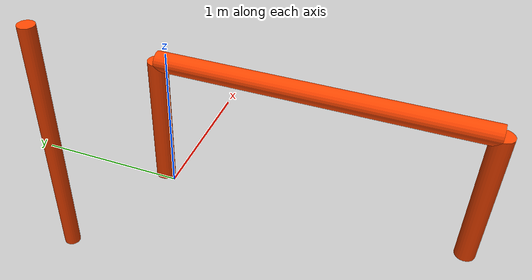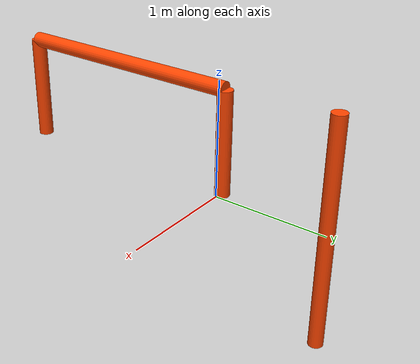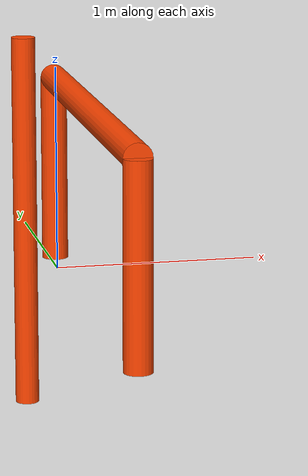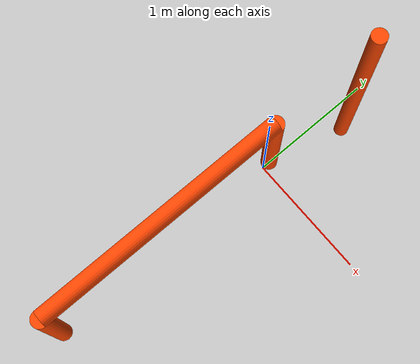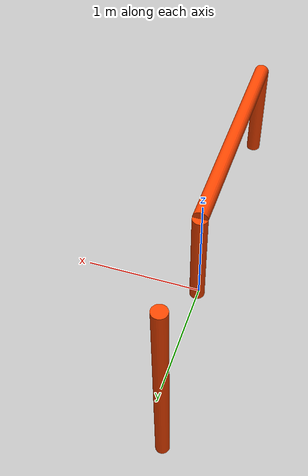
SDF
<sdf version="1.6">
 <world name="default">
  <light name="sun" type="directional">
   <pose>0 0 10 0 -0 0</pose>
   <diffuse>0.8 0.8 0.8 1</diffuse>
   <specular>0.2 0.2 0.2 1</specular>
   <attenuation>
    <range>1000</range>
    <constant>0.9</constant>
    <linear>0.01</linear>
    <quadratic>0.001</quadratic>
   </attenuation>
   <direction>-0.5 0.1 -0.9</direction>
  </light>
  <gravity>0 0 0</gravity>
  <include><uri>model://qual_marker</uri></include>
  <include><uri>model://qual_gate</uri><pose>0 -0.941261 0.491851 0 -0 0</pose></include>
 </world>
</sdf>

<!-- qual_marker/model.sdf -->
<sdf version='1.6'>
    <model name='qual_marker'>
        <pose>0 0 0 0 0 0</pose>
        <link name="left">
            <pose>0 1 0 0 0 0</pose>
            <visual name="visual">
                <geometry>
                    <cylinder>
                        <radius>0.0635</radius>
                        <length>2</length>
                    </cylinder>
                </geometry>
                <material>
                    <ambient>0.3 0.3 0.3 1</ambient>
                    <diffuse>1 0.27 0 1</diffuse>
                    <specular>0.01 0.01 0.01 1</specular>
                    <emissive>0 0 0 1</emissive>
                </material>
            </visual>
        </link>
        <static>1</static>
    </model>
</sdf>

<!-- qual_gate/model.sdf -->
<sdf version='1.6'>
    <model name='qual_gate'>
        <pose>0 0 0 0 0 0</pose>
        <link name="left">
            <pose>0 1 0 0 0 0</pose>
            <visual name="visual">
                <geometry>
                    <cylinder>
                        <radius>0.0635</radius>
                        <length>0.9</length>
                    </cylinder>
                </geometry>
                <material>
                    <ambient>0.3 0.3 0.3 1</ambient>
                    <diffuse>1 0.27 0 1</diffuse>
                    <specular>0.01 0.01 0.01 1</specular>
                    <emissive>0 0 0 1</emissive>
                </material>
            </visual>
        </link>
	<link name="right">
            <pose>0 -1 0 0 0 0</pose>
            <visual name="visual">
                <geometry>
                    <cylinder>
                        <radius>0.0635</radius>
                        <length>0.9</length>
                    </cylinder>
                </geometry>
                <material>
                    <ambient>0.3 0.3 0.3 1</ambient>
                    <diffuse>1 0.27 0 1</diffuse>
                    <specular>0.01 0.01 0.01 1</specular>
                    <emissive>0 0 0 1</emissive>
                </material>
            </visual>
        </link>
	<link name="middle">
            <pose>0 0 .45 1.5708 0 0</pose>
            <visual name="visual">
                <geometry>
                    <cylinder>
                        <radius>0.0635</radius>
                        <length>2</length>
                    </cylinder>
                </geometry>
                <material>
                    <ambient>0.3 0.3 0.3 1</ambient>
                    <diffuse>1 0.27 0 1</diffuse>
                    <specular>0.01 0.01 0.01 1</specular>
                    <emissive>0 0 0 1</emissive>
                </material>
            </visual>
        </link>

        <static>1</static>
    </model>
</sdf>
